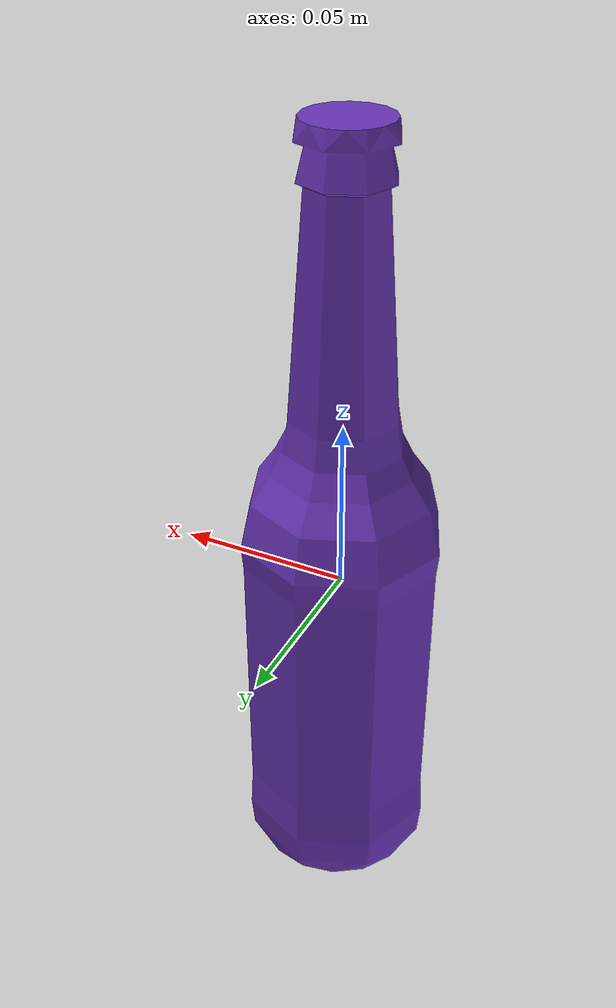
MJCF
<mujoco model="top_watertight_tiny">
  <default>
    <default group="2" type="mesh" contype="0" conaffinity="0">
      <geom group="2" type="mesh" contype="0" conaffinity="0"/>
    </default>
    <default group="3" type="mesh">
      <geom group="3" type="mesh"/>
    </default>
  </default>
  <asset>
    <mesh file="top_watertight_tiny.obj"/>
    <mesh file="top_watertight_tiny_collision_0.obj"/>
    <mesh file="top_watertight_tiny_collision_1.obj"/>
    <mesh file="top_watertight_tiny_collision_2.obj"/>
    <mesh file="top_watertight_tiny_collision_3.obj"/>
    <mesh file="top_watertight_tiny_collision_4.obj"/>
    <mesh file="top_watertight_tiny_collision_5.obj"/>
    <mesh file="top_watertight_tiny_collision_6.obj"/>
    <mesh file="top_watertight_tiny_collision_7.obj"/>
    <mesh file="top_watertight_tiny_collision_8.obj"/>
    <mesh file="top_watertight_tiny_collision_9.obj"/>
    <mesh file="top_watertight_tiny_collision_10.obj"/>
    <mesh file="top_watertight_tiny_collision_11.obj"/>
    <mesh file="top_watertight_tiny_collision_12.obj"/>
    <mesh file="top_watertight_tiny_collision_13.obj"/>
    <mesh file="top_watertight_tiny_collision_14.obj"/>
    <mesh file="top_watertight_tiny_collision_15.obj"/>
    <mesh file="top_watertight_tiny_collision_16.obj"/>
    <mesh file="top_watertight_tiny_collision_17.obj"/>
    <mesh file="top_watertight_tiny_collision_18.obj"/>
    <mesh file="top_watertight_tiny_collision_19.obj"/>
    <mesh file="top_watertight_tiny_collision_20.obj"/>
    <mesh file="top_watertight_tiny_collision_21.obj"/>
    <mesh file="top_watertight_tiny_collision_22.obj"/>
    <mesh file="top_watertight_tiny_collision_23.obj"/>
    <mesh file="top_watertight_tiny_collision_24.obj"/>
    <mesh file="top_watertight_tiny_collision_25.obj"/>
    <mesh file="top_watertight_tiny_collision_26.obj"/>
    <mesh file="top_watertight_tiny_collision_27.obj"/>
  </asset>
  <worldbody>
    <body name="top_watertight_tiny">
      <freejoint/>
      <geom mesh="top_watertight_tiny" group="2" type="mesh" rgba="0.4 0.2 0.7 1" contype="0" conaffinity="0"/>
      <geom mesh="top_watertight_tiny_collision_0" rgba="0.2351055401744362 0.5635702171048772 0.8819325778801492 1" group="3" type="mesh"/>
      <geom mesh="top_watertight_tiny_collision_1" rgba="0.23374395075557475 0.519166741773239 0.25618553011071354 1" group="3" type="mesh"/>
      <geom mesh="top_watertight_tiny_collision_2" rgba="0.7789375753732588 0.3249244557215849 0.3603089984459268 1" group="3" type="mesh"/>
      <geom mesh="top_watertight_tiny_collision_3" rgba="0.9298939204622906 0.7702396909990346 0.771887061875068 1" group="3" type="mesh"/>
      <geom mesh="top_watertight_tiny_collision_4" rgba="0.6161655885878884 0.9789052845723929 0.9493709871880728 1" group="3" type="mesh"/>
      <geom mesh="top_watertight_tiny_collision_5" rgba="0.2298192616114525 0.38826894684223845 0.29210423672848274 1" group="3" type="mesh"/>
      <geom mesh="top_watertight_tiny_collision_6" rgba="0.7686634308176284 0.7529945505721303 0.5888034496735877 1" group="3" type="mesh"/>
      <geom mesh="top_watertight_tiny_collision_7" rgba="0.6104620714902232 0.5398582405017605 0.43832169152952116 1" group="3" type="mesh"/>
      <geom mesh="top_watertight_tiny_collision_8" rgba="0.4786656694114704 0.15449096201573043 0.6181293622061563 1" group="3" type="mesh"/>
      <geom mesh="top_watertight_tiny_collision_9" rgba="0.49001380691510366 0.40032625349526996 0.9838538379055117 1" group="3" type="mesh"/>
      <geom mesh="top_watertight_tiny_collision_10" rgba="0.6386453327363442 0.8173899819230966 0.649204076073033 1" group="3" type="mesh"/>
      <geom mesh="top_watertight_tiny_collision_11" rgba="0.4084658753948296 0.025056836492333145 0.5286110371618963 1" group="3" type="mesh"/>
      <geom mesh="top_watertight_tiny_collision_12" rgba="0.33517420377613716 0.3294426812043981 0.3432465247158085 1" group="3" type="mesh"/>
      <geom mesh="top_watertight_tiny_collision_13" rgba="0.1564664355075086 0.4566491476955129 0.017287098654618194 1" group="3" type="mesh"/>
      <geom mesh="top_watertight_tiny_collision_14" rgba="0.6658292647881427 0.25010263550197886 0.6959030675035806 1" group="3" type="mesh"/>
      <geom mesh="top_watertight_tiny_collision_15" rgba="0.4367708962555311 0.12522503467903823 0.06305027207443192 1" group="3" type="mesh"/>
      <geom mesh="top_watertight_tiny_collision_16" rgba="0.37612738722112127 0.5991546661059007 0.032844274938324425 1" group="3" type="mesh"/>
      <geom mesh="top_watertight_tiny_collision_17" rgba="0.3001152276140513 0.6953462948459962 0.6119549398572451 1" group="3" type="mesh"/>
      <geom mesh="top_watertight_tiny_collision_18" rgba="0.7386359338204231 0.1034418454304803 0.1239247993668422 1" group="3" type="mesh"/>
      <geom mesh="top_watertight_tiny_collision_19" rgba="0.4329372764424724 0.23159084642387118 0.3339652777824603 1" group="3" type="mesh"/>
      <geom mesh="top_watertight_tiny_collision_20" rgba="0.8794968013892717 0.4967375231571045 0.20634347726900826 1" group="3" type="mesh"/>
      <geom mesh="top_watertight_tiny_collision_21" rgba="0.05998267092140874 0.5072261137328749 0.5542348453622307 1" group="3" type="mesh"/>
      <geom mesh="top_watertight_tiny_collision_22" rgba="0.43404060414828716 0.6871901544640626 0.04030653006859508 1" group="3" type="mesh"/>
      <geom mesh="top_watertight_tiny_collision_23" rgba="0.5894771172138707 0.15369343104137334 0.5091621694474333 1" group="3" type="mesh"/>
      <geom mesh="top_watertight_tiny_collision_24" rgba="0.39982114447665706 0.7499585652880622 0.07032449797104534 1" group="3" type="mesh"/>
      <geom mesh="top_watertight_tiny_collision_25" rgba="0.16429638749031417 0.705056774894421 0.7684381548289666 1" group="3" type="mesh"/>
      <geom mesh="top_watertight_tiny_collision_26" rgba="0.9687480975367738 0.6944929071129815 0.50152756067478 1" group="3" type="mesh"/>
      <geom mesh="top_watertight_tiny_collision_27" rgba="0.23935256415872141 0.6411928432476723 0.9938128892622102 1" group="3" type="mesh"/>
    </body>
  </worldbody>
</mujoco>
